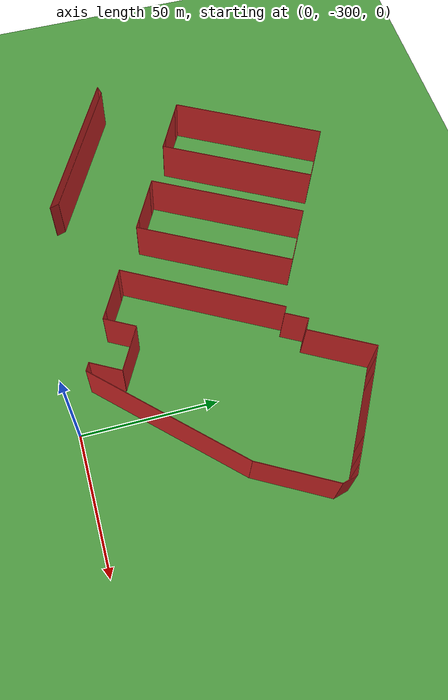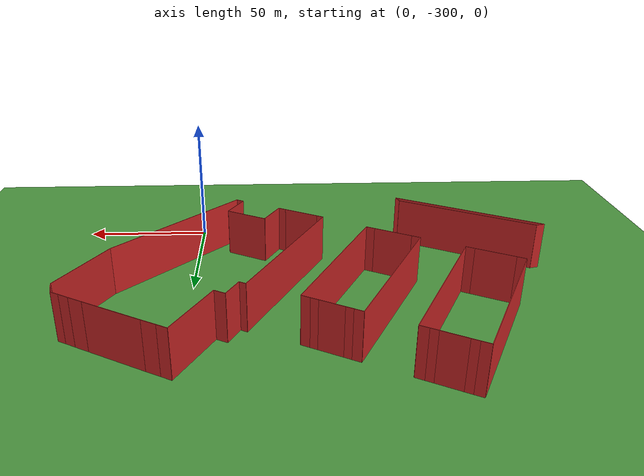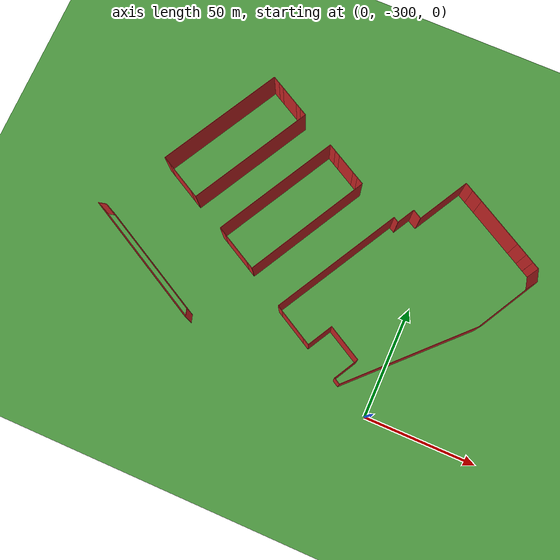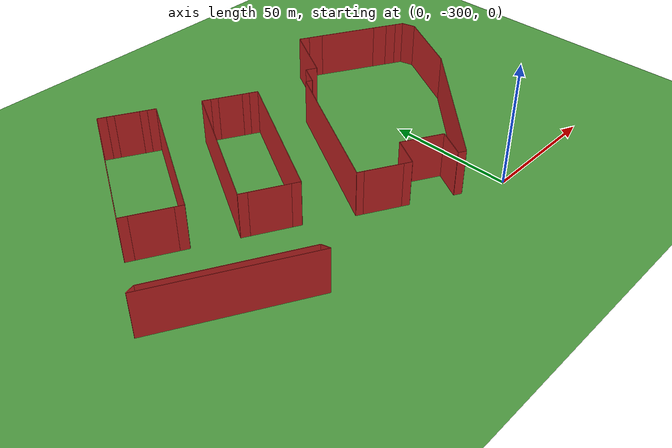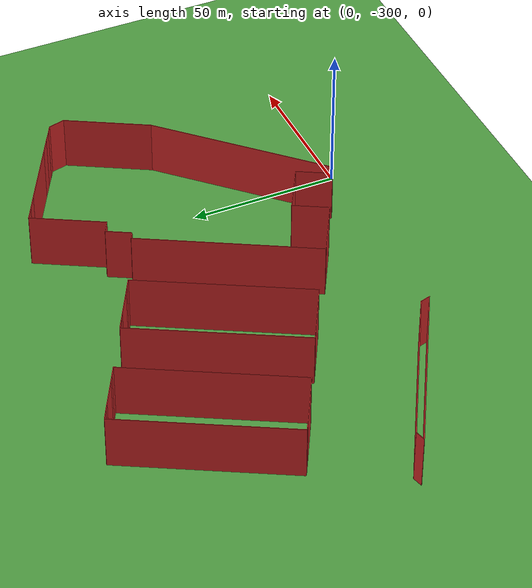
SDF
<sdf version="1.4">
 <world name="default">
  <model name="ground">
   <static>true</static>
   <link name="link">
    <collision name="collision">
     <geometry><plane><size>10000 10000</size><normal>0 0 1</normal></plane></geometry>
     <surface><friction><ode><mu>100</mu><mu2>50</mu2></ode></friction></surface>
    </collision>
    <visual name="visual">
     <pose>0 0 -1 0 0 0</pose>
     <geometry><plane><normal>0 0 1</normal><size>10000 10000</size></plane></geometry>
     <material>
      <script><uri>file://media/materials/scripts/gazebo.material</uri><name>Gazebo/Grass</name></script>
     </material>
    </visual>
   </link>
  </model>
  <include><uri>model://sun</uri></include>
  <model name="The British Empire Building">
   <static>true</static>
   <pose>-58.5487491288 -224.991116498 0.0 0 0 0</pose>
   <link name="The British Empire Building_0">
    <collision name="The British Empire Building_0">
     <geometry><box><size>59.2292714191 0.2 20.0</size></box></geometry>
    </collision>
    <visual name="The British Empire Building_0">
     <geometry><box><size>59.2292714191 0.2 20.0</size></box></geometry>
     <material>
      <script><uri>file://media/materials/scripts/gazebo.material</uri><name>Gazebo/Red</name></script>
     </material>
    </visual>
    <pose>4.9065977847 -11.8746312968 9.0 0 0 1.0731193368</pose>
   </link>
   <link name="The British Empire Building_1">
    <collision name="The British Empire Building_1">
     <geometry><box><size>3.441678412 0.2 20.0</size></box></geometry>
    </collision>
    <visual name="The British Empire Building_1">
     <geometry><box><size>3.441678412 0.2 20.0</size></box></geometry>
     <material>
      <script><uri>file://media/materials/scripts/gazebo.material</uri><name>Gazebo/Red</name></script>
     </material>
    </visual>
    <pose>-10.743283378 -37.0756756051 9.0 0 0 -0.497446633622</pose>
   </link>
   <link name="The British Empire Building_2">
    <collision name="The British Empire Building_2">
     <geometry><box><size>15.0608652066 0.2 20.0</size></box></geometry>
    </collision>
    <visual name="The British Empire Building_2">
     <geometry><box><size>15.0608652066 0.2 20.0</size></box></geometry>
     <material>
      <script><uri>file://media/materials/scripts/gazebo.material</uri><name>Gazebo/Red</name></script>
     </material>
    </visual>
    <pose>-18.8717869909 -32.6582717638 9.0 0 0 -0.497877714688</pose>
   </link>
   <link name="The British Empire Building_3">
    <collision name="The British Empire Building_3">
     <geometry><box><size>3.44168013574 0.2 20.0</size></box></geometry>
    </collision>
    <visual name="The British Empire Building_3">
     <geometry><box><size>3.44168013574 0.2 20.0</size></box></geometry>
     <material>
      <script><uri>file://media/materials/scripts/gazebo.material</uri><name>Gazebo/Red</name></script>
     </material>
    </visual>
    <pose>-27.0002896221 -28.2408643085 9.0 0 0 -0.497448751407</pose>
   </link>
   <link name="The British Empire Building_4">
    <collision name="The British Empire Building_4">
     <geometry><box><size>59.2844128936 0.2 20.0</size></box></geometry>
    </collision>
    <visual name="The British Empire Building_4">
     <geometry><box><size>59.2844128936 0.2 20.0</size></box></geometry>
     <material>
      <script><uri>file://media/materials/scripts/gazebo.material</uri><name>Gazebo/Red</name></script>
     </material>
    </visual>
    <pose>-14.3638120192 -1.37218923215 9.0 0 0 -2.06839629517</pose>
   </link>
   <link name="The British Empire Building_5">
    <collision name="The British Empire Building_5">
     <geometry><box><size>3.44167713498 0.2 20.0</size></box></geometry>
    </collision>
    <visual name="The British Empire Building_5">
     <geometry><box><size>3.44167713498 0.2 20.0</size></box></geometry>
     <material>
      <script><uri>file://media/materials/scripts/gazebo.material</uri><name>Gazebo/Red</name></script>
     </material>
    </visual>
    <pose>1.29721806807 23.8541600246 9.0 0 0 2.64413846025</pose>
   </link>
   <link name="The British Empire Building_6">
    <collision name="The British Empire Building_6">
     <geometry><box><size>2.84977285978 0.2 20.0</size></box></geometry>
    </collision>
    <visual name="The British Empire Building_6">
     <geometry><box><size>2.84977285978 0.2 20.0</size></box></geometry>
     <material>
      <script><uri>file://media/materials/scripts/gazebo.material</uri><name>Gazebo/Red</name></script>
     </material>
    </visual>
    <pose>4.06045304463 22.3507937218 9.0 0 0 2.64233407972</pose>
   </link>
   <link name="The British Empire Building_7">
    <collision name="The British Empire Building_7">
     <geometry><box><size>9.33274493632 0.2 20.0</size></box></geometry>
    </collision>
    <visual name="The British Empire Building_7">
     <geometry><box><size>9.33274493632 0.2 20.0</size></box></geometry>
     <material>
      <script><uri>file://media/materials/scripts/gazebo.material</uri><name>Gazebo/Red</name></script>
     </material>
    </visual>
    <pose>9.39789088767 19.4156528626 9.0 0 0 2.63773935755</pose>
   </link>
   <link name="The British Empire Building_8">
    <collision name="The British Empire Building_8">
     <geometry><box><size>2.86931583484 0.2 20.0</size></box></geometry>
    </collision>
    <visual name="The British Empire Building_8">
     <geometry><box><size>2.86931583484 0.2 20.0</size></box></geometry>
     <material>
      <script><uri>file://media/materials/scripts/gazebo.material</uri><name>Gazebo/Red</name></script>
     </material>
    </visual>
    <pose>14.7464487658 16.4805142957 9.0 0 0 2.64604647464</pose>
   </link>
   <link name="The British Empire Building_9">
    <collision name="The British Empire Building_9">
     <geometry><box><size>3.45546710681 0.2 20.0</size></box></geometry>
    </collision>
    <visual name="The British Empire Building_9">
     <geometry><box><size>3.45546710681 0.2 20.0</size></box></geometry>
     <material>
      <script><uri>file://media/materials/scripts/gazebo.material</uri><name>Gazebo/Red</name></script>
     </material>
    </visual>
    <pose>17.5263646294 14.9729427512 9.0 0 0 2.64353420042</pose>
   </link>
  </model>
  <model name="Saks Fifth Avenue">
   <static>true</static>
   <pose>-106.036871027 -279.121488446 0.0 0 0 0</pose>
   <link name="Saks Fifth Avenue_0">
    <collision name="Saks Fifth Avenue_0">
     <geometry><box><size>56.8719770081 0.2 20.0</size></box></geometry>
    </collision>
    <visual name="Saks Fifth Avenue_0">
     <geometry><box><size>56.8719770081 0.2 20.0</size></box></geometry>
     <material>
      <script><uri>file://media/materials/scripts/gazebo.material</uri><name>Gazebo/Red</name></script>
     </material>
    </visual>
    <pose>-4.5079761565 3.56010599889 9.0 0 0 -0.496895934993</pose>
   </link>
   <link name="Saks Fifth Avenue_1">
    <collision name="Saks Fifth Avenue_1">
     <geometry><box><size>3.5268548869 0.2 20.0</size></box></geometry>
    </collision>
    <visual name="Saks Fifth Avenue_1">
     <geometry><box><size>3.5268548869 0.2 20.0</size></box></geometry>
     <material>
      <script><uri>file://media/materials/scripts/gazebo.material</uri><name>Gazebo/Red</name></script>
     </material>
    </visual>
    <pose>-31.2174879545 16.6943202655 9.0 0 0 0.241183107155</pose>
   </link>
   <link name="Saks Fifth Avenue_2">
    <collision name="Saks Fifth Avenue_2">
     <geometry><box><size>61.953808751 0.2 20.0</size></box></geometry>
    </collision>
    <visual name="Saks Fifth Avenue_2">
     <geometry><box><size>61.953808751 0.2 20.0</size></box></geometry>
     <material>
      <script><uri>file://media/materials/scripts/gazebo.material</uri><name>Gazebo/Red</name></script>
     </material>
    </visual>
    <pose>-5.73659820501 1.43754691814 9.0 0 0 2.6421643283</pose>
   </link>
   <link name="Saks Fifth Avenue_3">
    <collision name="Saks Fifth Avenue_3">
     <geometry><box><size>3.53760339895 0.2 20.0</size></box></geometry>
    </collision>
    <visual name="Saks Fifth Avenue_3">
     <geometry><box><size>3.53760339895 0.2 20.0</size></box></geometry>
     <material>
      <script><uri>file://media/materials/scripts/gazebo.material</uri><name>Gazebo/Red</name></script>
     </material>
    </visual>
    <pose>20.9729135929 -11.6966673484 9.0 0 0 -1.29376783761</pose>
   </link>
  </model>
  <model name="International Building">
   <static>true</static>
   <pose>-1.63874091111 -237.993893804 0.0 0 0 0</pose>
   <link name="International Building_0">
    <collision name="International Building_0">
     <geometry><box><size>4.21263508497 0.2 20.0</size></box></geometry>
    </collision>
    <visual name="International Building_0">
     <geometry><box><size>4.21263508497 0.2 20.0</size></box></geometry>
     <material>
      <script><uri>file://media/materials/scripts/gazebo.material</uri><name>Gazebo/Red</name></script>
     </material>
    </visual>
    <pose>38.9643909373 24.8616077581 9.0 0 0 -0.518771937554</pose>
   </link>
   <link name="International Building_1">
    <collision name="International Building_1">
     <geometry><box><size>5.80423284209 0.2 20.0</size></box></geometry>
    </collision>
    <visual name="International Building_1">
     <geometry><box><size>5.80423284209 0.2 20.0</size></box></geometry>
     <material>
      <script><uri>file://media/materials/scripts/gazebo.material</uri><name>Gazebo/Red</name></script>
     </material>
    </visual>
    <pose>34.5943602338 27.3082302757 9.0 0 0 -0.50429742663</pose>
   </link>
   <link name="International Building_2">
    <collision name="International Building_2">
     <geometry><box><size>23.4573013915 0.2 20.0</size></box></geometry>
    </collision>
    <visual name="International Building_2">
     <geometry><box><size>23.4573013915 0.2 20.0</size></box></geometry>
     <material>
      <script><uri>file://media/materials/scripts/gazebo.material</uri><name>Gazebo/Red</name></script>
     </material>
    </visual>
    <pose>21.790068087 34.3870310895 9.0 0 0 -0.505205728917</pose>
   </link>
   <link name="International Building_3">
    <collision name="International Building_3">
     <geometry><box><size>5.79954881036 0.2 20.0</size></box></geometry>
    </collision>
    <visual name="International Building_3">
     <geometry><box><size>5.79954881036 0.2 20.0</size></box></geometry>
     <material>
      <script><uri>file://media/materials/scripts/gazebo.material</uri><name>Gazebo/Red</name></script>
     </material>
    </visual>
    <pose>8.97465980104 41.4405736152 9.0 0 0 -0.494818884101</pose>
   </link>
   <link name="International Building_4">
    <collision name="International Building_4">
     <geometry><box><size>4.26813469255 0.2 20.0</size></box></geometry>
    </collision>
    <visual name="International Building_4">
     <geometry><box><size>4.26813469255 0.2 20.0</size></box></geometry>
     <material>
      <script><uri>file://media/materials/scripts/gazebo.material</uri><name>Gazebo/Red</name></script>
     </material>
    </visual>
    <pose>4.55459774862 43.8493125195 9.0 0 0 -0.504592480582</pose>
   </link>
   <link name="International Building_5">
    <collision name="International Building_5">
     <geometry><box><size>25.1115474754 0.2 20.0</size></box></geometry>
    </collision>
    <visual name="International Building_5">
     <geometry><box><size>25.1115474754 0.2 20.0</size></box></geometry>
     <material>
      <script><uri>file://media/materials/scripts/gazebo.material</uri><name>Gazebo/Red</name></script>
     </material>
    </visual>
    <pose>-3.39000347063 33.8935993518 9.0 0 0 1.06562135365</pose>
   </link>
   <link name="International Building_6">
    <collision name="International Building_6">
     <geometry><box><size>4.52389037376 0.2 20.0</size></box></geometry>
    </collision>
    <visual name="International Building_6">
     <geometry><box><size>4.52389037376 0.2 20.0</size></box></geometry>
     <material>
      <script><uri>file://media/materials/scripts/gazebo.material</uri><name>Gazebo/Red</name></script>
     </material>
    </visual>
    <pose>-11.4458042159 24.0010496377 9.0 0 0 -0.505269772409</pose>
   </link>
   <link name="International Building_7">
    <collision name="International Building_7">
     <geometry><box><size>8.5891506108 0.2 20.0</size></box></geometry>
    </collision>
    <visual name="International Building_7">
     <geometry><box><size>8.5891506108 0.2 20.0</size></box></geometry>
     <material>
      <script><uri>file://media/materials/scripts/gazebo.material</uri><name>Gazebo/Red</name></script>
     </material>
    </visual>
    <pose>-15.4987807588 21.3351785035 9.0 0 0 1.06687950244</pose>
   </link>
   <link name="International Building_8">
    <collision name="International Building_8">
     <geometry><box><size>2.6532730818 0.2 20.0</size></box></geometry>
    </collision>
    <visual name="International Building_8">
     <geometry><box><size>2.6532730818 0.2 20.0</size></box></geometry>
     <material>
      <script><uri>file://media/materials/scripts/gazebo.material</uri><name>Gazebo/Red</name></script>
     </material>
    </visual>
    <pose>-18.7344619242 18.2145106785 9.0 0 0 -0.503490422564</pose>
   </link>
   <link name="International Building_9">
    <collision name="International Building_9">
     <geometry><box><size>61.6137804354 0.2 20.0</size></box></geometry>
    </collision>
    <visual name="International Building_9">
     <geometry><box><size>61.6137804354 0.2 20.0</size></box></geometry>
     <material>
      <script><uri>file://media/materials/scripts/gazebo.material</uri><name>Gazebo/Red</name></script>
     </material>
    </visual>
    <pose>-34.8012501993 -8.10671079254 9.0 0 0 1.06578966695</pose>
   </link>
   <link name="International Building_10">
    <collision name="International Building_10">
     <geometry><box><size>2.66302041415 0.2 20.0</size></box></geometry>
    </collision>
    <visual name="International Building_10">
     <geometry><box><size>2.66302041415 0.2 20.0</size></box></geometry>
     <material>
      <script><uri>file://media/materials/scripts/gazebo.material</uri><name>Gazebo/Red</name></script>
     </material>
    </visual>
    <pose>-48.5384620264 -35.7080926037 9.0 0 0 2.64012256685</pose>
   </link>
   <link name="International Building_11">
    <collision name="International Building_11">
     <geometry><box><size>14.5353980959 0.2 20.0</size></box></geometry>
    </collision>
    <visual name="International Building_11">
     <geometry><box><size>14.5353980959 0.2 20.0</size></box></geometry>
     <material>
      <script><uri>file://media/materials/scripts/gazebo.material</uri><name>Gazebo/Red</name></script>
     </material>
    </visual>
    <pose>-41.0104096052 -39.864377668 9.0 0 0 2.63658619624</pose>
   </link>
   <link name="International Building_12">
    <collision name="International Building_12">
     <geometry><box><size>3.15097258872 0.2 20.0</size></box></geometry>
    </collision>
    <visual name="International Building_12">
     <geometry><box><size>3.15097258872 0.2 20.0</size></box></geometry>
     <material>
      <script><uri>file://media/materials/scripts/gazebo.material</uri><name>Gazebo/Red</name></script>
     </material>
    </visual>
    <pose>-33.2710814313 -44.142779987 9.0 0 0 2.63661993581</pose>
   </link>
   <link name="International Building_13">
    <collision name="International Building_13">
     <geometry><box><size>12.2181155652 0.2 20.0</size></box></geometry>
    </collision>
    <visual name="International Building_13">
     <geometry><box><size>12.2181155652 0.2 20.0</size></box></geometry>
     <material>
      <script><uri>file://media/materials/scripts/gazebo.material</uri><name>Gazebo/Red</name></script>
     </material>
    </visual>
    <pose>-28.940210774 -39.5565036911 9.0 0 0 -2.07512626633</pose>
   </link>
   <link name="International Building_14">
    <collision name="International Building_14">
     <geometry><box><size>17.3006924239 0.2 20.0</size></box></geometry>
    </collision>
    <visual name="International Building_14">
     <geometry><box><size>17.3006924239 0.2 20.0</size></box></geometry>
     <material>
      <script><uri>file://media/materials/scripts/gazebo.material</uri><name>Gazebo/Red</name></script>
     </material>
    </visual>
    <pose>-18.4156554335 -38.389571715 9.0 0 0 2.63706325299</pose>
   </link>
   <link name="International Building_15">
    <collision name="International Building_15">
     <geometry><box><size>12.0625008653 0.2 20.0</size></box></geometry>
    </collision>
    <visual name="International Building_15">
     <geometry><box><size>12.0625008653 0.2 20.0</size></box></geometry>
     <material>
      <script><uri>file://media/materials/scripts/gazebo.material</uri><name>Gazebo/Red</name></script>
     </material>
    </visual>
    <pose>-13.7562274174 -47.8521911272 9.0 0 0 1.06671701289</pose>
   </link>
   <link name="International Building_16">
    <collision name="International Building_16">
     <geometry><box><size>3.16070681571 0.2 20.0</size></box></geometry>
    </collision>
    <visual name="International Building_16">
     <geometry><box><size>3.16070681571 0.2 20.0</size></box></geometry>
     <material>
      <script><uri>file://media/materials/scripts/gazebo.material</uri><name>Gazebo/Red</name></script>
     </material>
    </visual>
    <pose>-15.284923332 -53.8954623252 9.0 0 0 2.63832437116</pose>
   </link>
   <link name="International Building_17">
    <collision name="International Building_17">
     <geometry><box><size>63.9491560045 0.2 20.0</size></box></geometry>
    </collision>
    <visual name="International Building_17">
     <geometry><box><size>63.9491560045 0.2 20.0</size></box></geometry>
     <material>
      <script><uri>file://media/materials/scripts/gazebo.material</uri><name>Gazebo/Red</name></script>
     </material>
    </visual>
    <pose>8.4988686227 -31.8400896294 9.0 0 0 -2.34694649243</pose>
   </link>
   <link name="International Building_18">
    <collision name="International Building_18">
     <geometry><box><size>29.4202704017 0.2 20.0</size></box></geometry>
    </collision>
    <visual name="International Building_18">
     <geometry><box><size>29.4202704017 0.2 20.0</size></box></geometry>
     <material>
      <script><uri>file://media/materials/scripts/gazebo.material</uri><name>Gazebo/Red</name></script>
     </material>
    </visual>
    <pose>38.0754793527 3.81785939277 9.0 0 0 -2.08049042265</pose>
   </link>
   <link name="International Building_19">
    <collision name="International Building_19">
     <geometry><box><size>5.71649365281 0.2 20.0</size></box></geometry>
    </collision>
    <visual name="International Building_19">
     <geometry><box><size>5.71649365281 0.2 20.0</size></box></geometry>
     <material>
      <script><uri>file://media/materials/scripts/gazebo.material</uri><name>Gazebo/Red</name></script>
     </material>
    </visual>
    <pose>44.5354159726 19.4250251875 9.0 0 0 -1.3171304357</pose>
   </link>
   <link name="International Building_20">
    <collision name="International Building_20">
     <geometry><box><size>3.43366004711 0.2 20.0</size></box></geometry>
    </collision>
    <visual name="International Building_20">
     <geometry><box><size>3.43366004711 0.2 20.0</size></box></geometry>
     <material>
      <script><uri>file://media/materials/scripts/gazebo.material</uri><name>Gazebo/Red</name></script>
     </material>
    </visual>
    <pose>42.3058522376 23.0045355549 9.0 0 0 -0.493135526796</pose>
   </link>
  </model>
  <model name="La Maison Française">
   <static>true</static>
   <pose>-93.0490396847 -206.194264956 0.0 0 0 0</pose>
   <link name="La Maison Française_0">
    <collision name="La Maison Française_0">
     <geometry><box><size>59.2241770709 0.2 20.0</size></box></geometry>
    </collision>
    <visual name="La Maison Française_0">
     <geometry><box><size>59.2241770709 0.2 20.0</size></box></geometry>
     <material>
      <script><uri>file://media/materials/scripts/gazebo.material</uri><name>Gazebo/Red</name></script>
     </material>
    </visual>
    <pose>4.90808383465 -11.8731677352 9.0 0 0 1.07328372561</pose>
   </link>
   <link name="La Maison Française_1">
    <collision name="La Maison Française_1">
     <geometry><box><size>3.45145780321 0.2 20.0</size></box></geometry>
    </collision>
    <visual name="La Maison Française_1">
     <geometry><box><size>3.45145780321 0.2 20.0</size></box></geometry>
     <material>
      <script><uri>file://media/materials/scripts/gazebo.material</uri><name>Gazebo/Red</name></script>
     </material>
    </visual>
    <pose>-10.7418614205 -37.0742898739 9.0 0 0 -0.495913695666</pose>
   </link>
   <link name="La Maison Française_2">
    <collision name="La Maison Française_2">
     <geometry><box><size>15.0568604231 0.2 20.0</size></box></geometry>
    </collision>
    <visual name="La Maison Française_2">
     <geometry><box><size>15.0568604231 0.2 20.0</size></box></geometry>
     <material>
      <script><uri>file://media/materials/scripts/gazebo.material</uri><name>Gazebo/Red</name></script>
     </material>
    </visual>
    <pose>-18.8759134104 -32.6610562778 9.0 0 0 -0.497390744331</pose>
   </link>
   <link name="La Maison Française_3">
    <collision name="La Maison Française_3">
     <geometry><box><size>3.44571120666 0.2 20.0</size></box></geometry>
    </collision>
    <visual name="La Maison Française_3">
     <geometry><box><size>3.44571120666 0.2 20.0</size></box></geometry>
     <material>
      <script><uri>file://media/materials/scripts/gazebo.material</uri><name>Gazebo/Red</name></script>
     </material>
    </visual>
    <pose>-27.0044048065 -28.2436075268 9.0 0 0 -0.499601361384</pose>
   </link>
   <link name="La Maison Française_4">
    <collision name="La Maison Française_4">
     <geometry><box><size>59.2846265711 0.2 20.0</size></box></geometry>
    </collision>
    <visual name="La Maison Française_4">
     <geometry><box><size>59.2846265711 0.2 20.0</size></box></geometry>
     <material>
      <script><uri>file://media/materials/scripts/gazebo.material</uri><name>Gazebo/Red</name></script>
     </material>
    </visual>
    <pose>-14.3678590045 -1.37062781496 9.0 0 0 -2.0683968806</pose>
   </link>
   <link name="La Maison Française_5">
    <collision name="La Maison Française_5">
     <geometry><box><size>3.44168079227 0.2 20.0</size></box></geometry>
    </collision>
    <visual name="La Maison Française_5">
     <geometry><box><size>3.44168079227 0.2 20.0</size></box></geometry>
     <material>
      <script><uri>file://media/materials/scripts/gazebo.material</uri><name>Gazebo/Red</name></script>
     </material>
    </visual>
    <pose>1.29323523928 23.8557993624 9.0 0 0 2.64413395969</pose>
   </link>
   <link name="La Maison Française_6">
    <collision name="La Maison Française_6">
     <geometry><box><size>2.85954293255 0.2 20.0</size></box></geometry>
    </collision>
    <visual name="La Maison Française_6">
     <geometry><box><size>2.85954293255 0.2 20.0</size></box></geometry>
     <material>
      <script><uri>file://media/materials/scripts/gazebo.material</uri><name>Gazebo/Red</name></script>
     </material>
    </visual>
    <pose>4.06202613848 22.3524191524 9.0 0 0 2.64419141758</pose>
   </link>
   <link name="La Maison Française_7">
    <collision name="La Maison Française_7">
     <geometry><box><size>9.33275508938 0.2 20.0</size></box></geometry>
    </collision>
    <visual name="La Maison Française_7">
     <geometry><box><size>9.33275508938 0.2 20.0</size></box></geometry>
     <material>
      <script><uri>file://media/materials/scripts/gazebo.material</uri><name>Gazebo/Red</name></script>
     </material>
    </visual>
    <pose>9.40501626335 19.4172511575 9.0 0 0 2.63773484117</pose>
   </link>
   <link name="La Maison Française_8">
    <collision name="La Maison Française_8">
     <geometry><box><size>2.87333371928 0.2 20.0</size></box></geometry>
    </collision>
    <visual name="La Maison Française_8">
     <geometry><box><size>2.87333371928 0.2 20.0</size></box></geometry>
     <material>
      <script><uri>file://media/materials/scripts/gazebo.material</uri><name>Gazebo/Red</name></script>
     </material>
    </visual>
    <pose>14.7535667846 16.4778739568 9.0 0 0 2.64346330746</pose>
   </link>
   <link name="La Maison Française_9">
    <collision name="La Maison Française_9">
     <geometry><box><size>3.44167907115 0.2 20.0</size></box></geometry>
    </collision>
    <visual name="La Maison Française_9">
     <geometry><box><size>3.44167907115 0.2 20.0</size></box></geometry>
     <material>
      <script><uri>file://media/materials/scripts/gazebo.material</uri><name>Gazebo/Red</name></script>
     </material>
    </visual>
    <pose>17.5279190673 14.970288162 9.0 0 0 2.64413608261</pose>
   </link>
  </model>
 </world>
</sdf>
